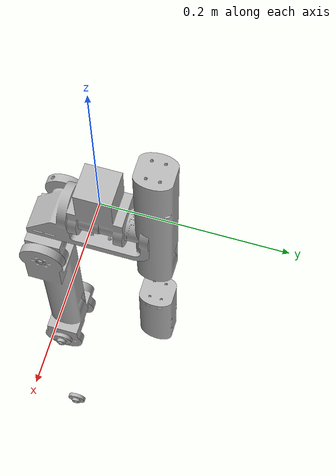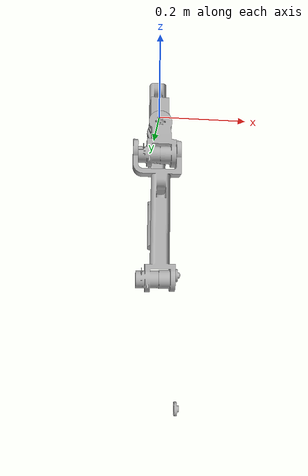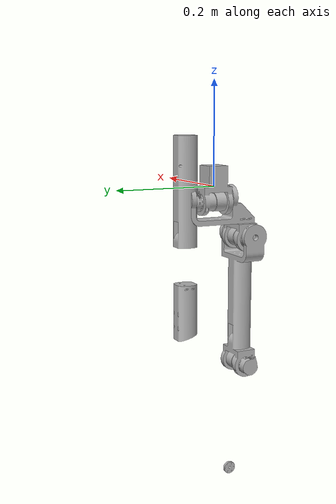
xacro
<?xml version="1.0" ?>
<robot name="robotleg" xmlns:xacro="http://www.ros.org/wiki/xacro">

<xacro:include filename="$(find robotleg_description)/urdf/materials.xacro" />
<xacro:include filename="$(find robotleg_description)/urdf/robotleg.trans" />
<xacro:include filename="$(find robotleg_description)/urdf/robotleg.gazebo" />
<link name="base_link">
  <inertial>
    <origin rpy="0 0 0" xyz="-9.369973914028342e-06 0.001690566162448438 -0.008146420072387993"/>
    <mass value="1.3507716732240094"/>
    <inertia ixx="0.001302" ixy="0.0" ixz="-0.0" iyy="0.001034" iyz="4.9e-05" izz="0.000604"/>
  </inertial>
  <visual>
    <origin rpy="0 0 0" xyz="0 0 0"/>
    <geometry>
      <mesh filename="package://robotleg_description/meshes/base_link.stl" scale="0.001 0.001 0.001"/>
    </geometry>
    <material name="silver"/>
  </visual>
  <collision>
    <origin rpy="0 0 0" xyz="0 0 0"/>
    <geometry>
      <mesh filename="package://robotleg_description/meshes/base_link.stl" scale="0.001 0.001 0.001"/>
    </geometry>
  </collision>
</link>

<link name="joint_3">
  <inertial>
    <origin rpy="0 0 0" xyz="1.441120806777516e-06 0.008079805361456853 0.00018129790863215256"/>
    <mass value="0.0197994934350134"/>
    <inertia ixx="1e-06" ixy="0.0" ixz="0.0" iyy="2e-06" iyz="0.0" izz="1e-06"/>
  </inertial>
  <visual>
    <origin rpy="0 0 0" xyz="-0.0 0.042 0.023"/>
    <geometry>
      <mesh filename="package://robotleg_description/meshes/joint_3.stl" scale="0.001 0.001 0.001"/>
    </geometry>
    <material name="silver"/>
  </visual>
  <collision>
    <origin rpy="0 0 0" xyz="-0.0 0.042 0.023"/>
    <geometry>
      <mesh filename="package://robotleg_description/meshes/joint_3.stl" scale="0.001 0.001 0.001"/>
    </geometry>
  </collision>
</link>

<link name="link1_1">
  <inertial>
    <origin rpy="0 0 0" xyz="-0.005979810633911876 0.00048533672305276637 -0.057388402816478126"/>
    <mass value="1.8576009926494503"/>
    <inertia ixx="0.004643" ixy="-5.9e-05" ixz="-6.9e-05" iyy="0.002099" iyz="-0.001197" izz="0.003578"/>
  </inertial>
  <visual>
    <origin rpy="0 0 0" xyz="-0.004763 0.0358 0.014751"/>
    <geometry>
      <mesh filename="package://robotleg_description/meshes/link1_1.stl" scale="0.001 0.001 0.001"/>
    </geometry>
    <material name="silver"/>
  </visual>
  <collision>
    <origin rpy="0 0 0" xyz="-0.004763 0.0358 0.014751"/>
    <geometry>
      <mesh filename="package://robotleg_description/meshes/link1_1.stl" scale="0.001 0.001 0.001"/>
    </geometry>
  </collision>
</link>

<link name="joint_6">
  <inertial>
    <origin rpy="0 0 0" xyz="-0.008079305361456908 1.4411208068276782e-06 0.00018094854372685543"/>
    <mass value="0.0197994934350134"/>
    <inertia ixx="2e-06" ixy="-0.0" ixz="-0.0" iyy="1e-06" iyz="0.0" izz="1e-06"/>
  </inertial>
  <visual>
    <origin rpy="0 0 0" xyz="-0.042012 0.0608 0.095978"/>
    <geometry>
      <mesh filename="package://robotleg_description/meshes/joint_6.stl" scale="0.001 0.001 0.001"/>
    </geometry>
    <material name="silver"/>
  </visual>
  <collision>
    <origin rpy="0 0 0" xyz="-0.042012 0.0608 0.095978"/>
    <geometry>
      <mesh filename="package://robotleg_description/meshes/joint_6.stl" scale="0.001 0.001 0.001"/>
    </geometry>
  </collision>
</link>

<link name="link2_1">
  <inertial>
    <origin rpy="0 0 0" xyz="-0.03822567356962517 -0.004754559360021865 -0.15641251707812276"/>
    <mass value="3.1185512630003815"/>
    <inertia ixx="0.026318" ixy="-0.0" ixz="0.000423" iyy="0.027478" iyz="-8.6e-05" izz="0.001989"/>
  </inertial>
  <visual>
    <origin rpy="0 0 0" xyz="-0.035812 0.056037 0.087729"/>
    <geometry>
      <mesh filename="package://robotleg_description/meshes/link2_1.stl" scale="0.001 0.001 0.001"/>
    </geometry>
    <material name="silver"/>
  </visual>
  <collision>
    <origin rpy="0 0 0" xyz="-0.035812 0.056037 0.087729"/>
    <geometry>
      <mesh filename="package://robotleg_description/meshes/link2_1.stl" scale="0.001 0.001 0.001"/>
    </geometry>
  </collision>
</link>

<link name="joint_7">
  <inertial>
    <origin rpy="0 0 0" xyz="-0.008079305361456839 9.411208068965671e-07 0.00018159917882104581"/>
    <mass value="0.0197994934350134"/>
    <inertia ixx="2e-06" ixy="-0.0" ixz="-0.0" iyy="1e-06" iyz="0.0" izz="1e-06"/>
  </inertial>
  <visual>
    <origin rpy="0 0 0" xyz="-0.042012 0.060787 0.352157"/>
    <geometry>
      <mesh filename="package://robotleg_description/meshes/joint_7.stl" scale="0.001 0.001 0.001"/>
    </geometry>
    <material name="silver"/>
  </visual>
  <collision>
    <origin rpy="0 0 0" xyz="-0.042012 0.060787 0.352157"/>
    <geometry>
      <mesh filename="package://robotleg_description/meshes/joint_7.stl" scale="0.001 0.001 0.001"/>
    </geometry>
  </collision>
</link>

<link name="link3_1">
  <inertial>
    <origin rpy="0 0 0" xyz="-0.03822667342791625 -0.004754059283311046 -0.1564118661627638"/>
    <mass value="3.118551263000379"/>
    <inertia ixx="0.026318" ixy="-0.0" ixz="0.000423" iyy="0.027478" iyz="-8.6e-05" izz="0.001989"/>
  </inertial>
  <visual>
    <origin rpy="0 0 0" xyz="-0.035813 0.056025 0.343908"/>
    <geometry>
      <mesh filename="package://robotleg_description/meshes/link3_1.stl" scale="0.001 0.001 0.001"/>
    </geometry>
    <material name="silver"/>
  </visual>
  <collision>
    <origin rpy="0 0 0" xyz="-0.035813 0.056025 0.343908"/>
    <geometry>
      <mesh filename="package://robotleg_description/meshes/link3_1.stl" scale="0.001 0.001 0.001"/>
    </geometry>
  </collision>
</link>

<link name="joint_8">
  <inertial>
    <origin rpy="0 0 0" xyz="-0.008080305361456805 1.4411208069525783e-06 0.00018124981391520745"/>
    <mass value="0.0197994934350134"/>
    <inertia ixx="2e-06" ixy="-0.0" ixz="-0.0" iyy="1e-06" iyz="0.0" izz="1e-06"/>
  </inertial>
  <visual>
    <origin rpy="0 0 0" xyz="-0.042013 0.060775 0.608335"/>
    <geometry>
      <mesh filename="package://robotleg_description/meshes/joint_8.stl" scale="0.001 0.001 0.001"/>
    </geometry>
    <material name="silver"/>
  </visual>
  <collision>
    <origin rpy="0 0 0" xyz="-0.042013 0.060775 0.608335"/>
    <geometry>
      <mesh filename="package://robotleg_description/meshes/joint_8.stl" scale="0.001 0.001 0.001"/>
    </geometry>
  </collision>
</link>

<link name="link4_1">
  <inertial>
    <origin rpy="0 0 0" xyz="-0.0381264425947731 0.0047494988865498106 -0.11536857987982319"/>
    <mass value="2.270179589776367"/>
    <inertia ixx="0.011994" ixy="0.0" ixz="0.000468" iyy="0.012888" iyz="-8.5e-05" izz="0.001521"/>
  </inertial>
  <visual>
    <origin rpy="0 0 0" xyz="-0.035812 0.065537 0.600086"/>
    <geometry>
      <mesh filename="package://robotleg_description/meshes/link4_1.stl" scale="0.001 0.001 0.001"/>
    </geometry>
    <material name="silver"/>
  </visual>
  <collision>
    <origin rpy="0 0 0" xyz="-0.035812 0.065537 0.600086"/>
    <geometry>
      <mesh filename="package://robotleg_description/meshes/link4_1.stl" scale="0.001 0.001 0.001"/>
    </geometry>
  </collision>
</link>

<joint name="Rev22" type="continuous">
  <origin rpy="0 0 0" xyz="0.0 -0.042 -0.023"/>
  <parent link="base_link"/>
  <child link="joint_3"/>
  <axis xyz="-0.0 -1.0 -0.0"/>
</joint>

<joint name="Rigid23" type="fixed">
  <origin rpy="0 0 0" xyz="0.004763 0.0062 0.008249"/>
  <parent link="joint_3"/>
  <child link="link1_1"/>
</joint>

<joint name="Rev24" type="continuous">
  <origin rpy="0 0 0" xyz="0.037249 -0.025 -0.081227"/>
  <parent link="link1_1"/>
  <child link="joint_6"/>
  <axis xyz="1.0 -0.0 0.0"/>
</joint>

<joint name="Rigid25" type="fixed">
  <origin rpy="0 0 0" xyz="-0.0062 0.004763 0.008249"/>
  <parent link="joint_6"/>
  <child link="link2_1"/>
</joint>

<joint name="Rev26" type="continuous">
  <origin rpy="0 0 0" xyz="0.0062 -0.00475 -0.264428"/>
  <parent link="link2_1"/>
  <child link="joint_7"/>
  <axis xyz="1.0 -0.0 0.0"/>
</joint>

<joint name="Rigid27" type="fixed">
  <origin rpy="0 0 0" xyz="-0.006199 0.004762 0.008249"/>
  <parent link="joint_7"/>
  <child link="link3_1"/>
</joint>

<joint name="Rev28" type="continuous">
  <origin rpy="0 0 0" xyz="0.0062 -0.00475 -0.264427"/>
  <parent link="link3_1"/>
  <child link="joint_8"/>
  <axis xyz="1.0 -0.0 -0.0"/>
</joint>

<joint name="Rigid29" type="fixed">
  <origin rpy="0 0 0" xyz="-0.006201 -0.004762 0.008249"/>
  <parent link="joint_8"/>
  <child link="link4_1"/>
</joint>

</robot>

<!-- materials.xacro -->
<robot name="robotleg" xmlns:xacro="http://www.ros.org/wiki/xacro" >

<material name="silver">
  <color rgba="0.700 0.700 0.700 1.000"/>
</material>

<material name="blue">
  <color rgba= "0 0 1 1"/>
</material>

<material name="grey">
  <color rgba="0.75 0.75 0.75 1"/>
</material>

<material name="black">
  <color rgba="0 0 0 1"/>
</material>

<material name="light_black">
  <color rgba="0.2 0.1 0.1 1"/>
</material>

</robot>

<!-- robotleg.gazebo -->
<robot name="robotleg" xmlns:xacro="http://www.ros.org/wiki/xacro" >

<xacro:property name="body_color" value="Gazebo/Silver" />

<gazebo>
  <plugin filename="libgazebo_ros_control.so" name="control"/>
</gazebo>
<gazebo reference="base_link">
  <material>${body_color}</material>
  <mu1>0.2</mu1>
  <mu2>0.2</mu2>
  <selfCollide>true</selfCollide>
  <gravity>true</gravity>
</gazebo>

<gazebo reference="joint_3">
  <material>${body_color}</material>
  <mu1>0.2</mu1>
  <mu2>0.2</mu2>
  <selfCollide>true</selfCollide>
</gazebo>

<gazebo reference="link1_1">
  <material>${body_color}</material>
  <mu1>0.2</mu1>
  <mu2>0.2</mu2>
  <selfCollide>true</selfCollide>
</gazebo>

<gazebo reference="joint_6">
  <material>${body_color}</material>
  <mu1>0.2</mu1>
  <mu2>0.2</mu2>
  <selfCollide>true</selfCollide>
</gazebo>

<gazebo reference="link2_1">
  <material>${body_color}</material>
  <mu1>0.2</mu1>
  <mu2>0.2</mu2>
  <selfCollide>true</selfCollide>
</gazebo>

<gazebo reference="joint_7">
  <material>${body_color}</material>
  <mu1>0.2</mu1>
  <mu2>0.2</mu2>
  <selfCollide>true</selfCollide>
</gazebo>

<gazebo reference="link3_1">
  <material>${body_color}</material>
  <mu1>0.2</mu1>
  <mu2>0.2</mu2>
  <selfCollide>true</selfCollide>
</gazebo>

<gazebo reference="joint_8">
  <material>${body_color}</material>
  <mu1>0.2</mu1>
  <mu2>0.2</mu2>
  <selfCollide>true</selfCollide>
</gazebo>

<gazebo reference="link4_1">
  <material>${body_color}</material>
  <mu1>0.2</mu1>
  <mu2>0.2</mu2>
  <selfCollide>true</selfCollide>
</gazebo>

</robot>
